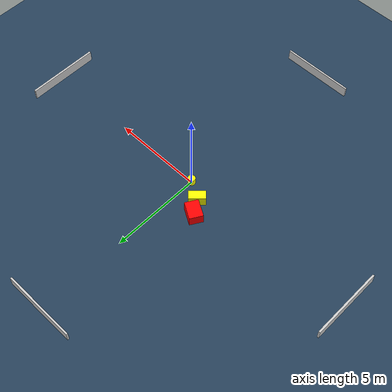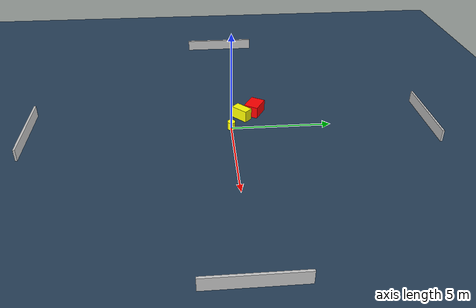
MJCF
<?xml version="1.0" ?>
<mujoco model="generated_environment">
  <option timestep="0.01" integrator="RK4" cone="elliptic"/>
  <default>
    <geom density="1"/>
  </default>
  <asset>
    <texture builtin="gradient" height="3072" name="skybox" rgb1="0.3 0.5 0.7" rgb2="0 0 0" type="skybox" width="512"/>
    <texture builtin="checker" height="300" name="groundplane" rgb1="0.2 0.3 0.4" rgb2="0.1 0.2 0.3" type="2d" width="300"/>
    <material name="groundplane" reflectance="0.2" texrepeat="5 5" texture="groundplane"/>
  </asset>
  <worldbody>
    <light dir="0 0 -1" directional="true" pos="0 0 1.5"/>
    <geom condim="3" friction="0.5 0.005 0.001" material="groundplane" name="floor" pos="0 0 0" size="0 0 0.05" type="plane"/>
    <body name="walls">
      <geom name="wall_1" condim="4" pos="-10.0 0.0 0.3" rgba="0.800000011920929 0.800000011920929 0.800000011920929 1.0" size="0.05 2.0 0.3" type="box"/>
      <geom name="wall_2" condim="4" pos="10.0 0.0 0.3" rgba="0.800000011920929 0.800000011920929 0.800000011920929 1.0" size="0.05 2.0 0.3" type="box"/>
      <geom name="wall_3" condim="4" pos="0.0 -10.0 0.3" rgba="0.800000011920929 0.800000011920929 0.800000011920929 1.0" size="2.0 0.05 0.3" type="box"/>
      <geom name="wall_4" condim="4" pos="0.0 10.0 0.3" rgba="0.800000011920929 0.800000011920929 0.800000011920929 1.0" size="2.0 0.05 0.3" type="box"/>
    </body>
    <body name="robot">
      <joint name="joint_x" type="slide" pos="0 0 0" axis="1 0 0"/>
      <joint name="joint_y" type="slide" pos="0 0 0" axis="0 1 0"/>
      <geom name="robot" type="cylinder" pos="0.0 0.0 0.2" size="0.2 0.2 0.0" mass="5.0" friction="1.0 0.005 0.0001" condim="4" rgba="1.0 1.0 0.0 1.0"/>
    </body>
    <body name="obstacle_1_movable">
      <geom name="obstacle_1_movable" condim="4" pos="-0.9884833842672872 0.6166549536439992 0.3" euler="0 0 224.54113389724876" friction="0.0 0.005 0.001" rgba="1.0 1.0 0.0 1.0" size="0.4508304918210146 0.23345650899918785 0.3" type="box" mass="0.1"/>
      <joint type="free"/>
    </body>
    <body name="obstacle_2_static">
      <geom name="obstacle_2_static" condim="4" pos="-1.4583503581526058 1.3268678087889987 0.3" euler="0 0 329.34240335810057" friction="0.0 0.005 0.001" rgba="1.0 0.0 0.0 1.0" size="0.48704381661442714 0.3676422332777455 0.3" type="box"/>
    </body>
  </worldbody>
  <actuator>
    <motor name="actuator_x" joint="joint_x" gear="1" ctrlrange="-1 1"/>
    <motor name="actuator_y" joint="joint_y" gear="1" ctrlrange="-1 1"/>
  </actuator>
</mujoco>
